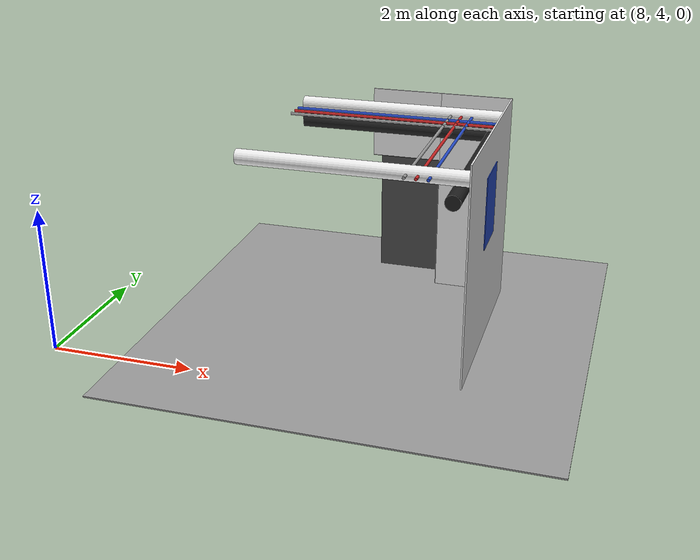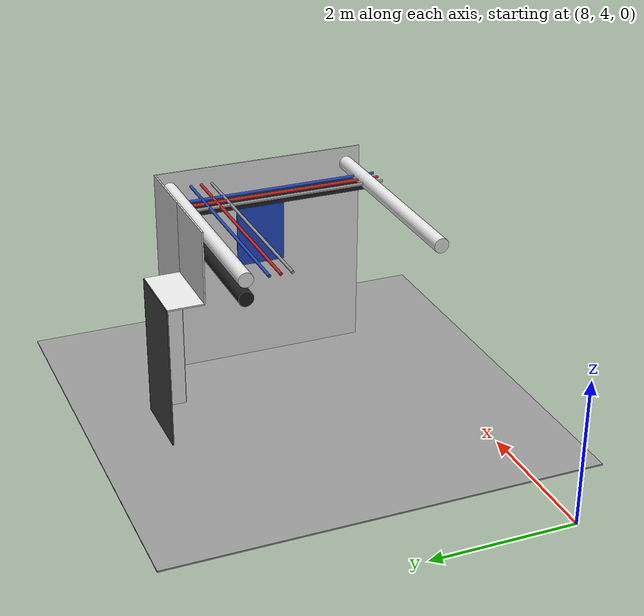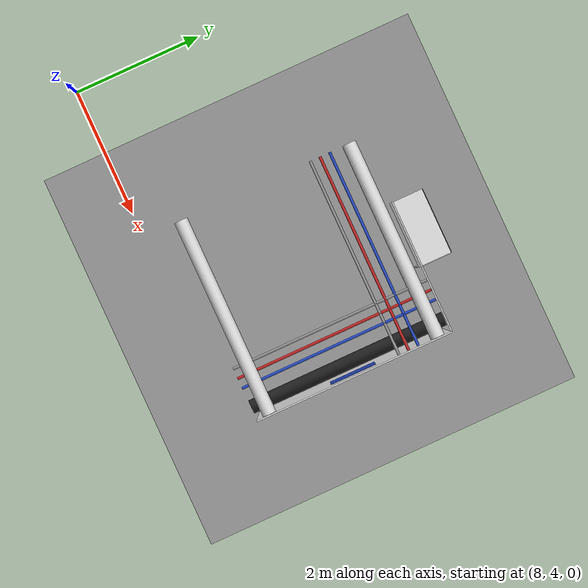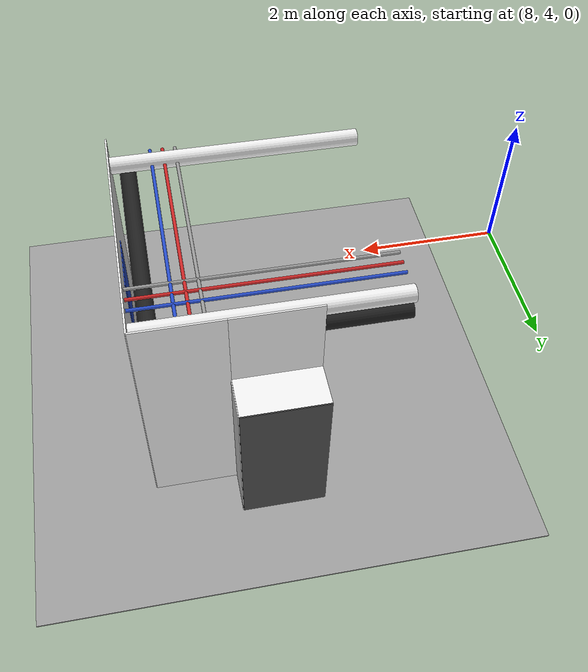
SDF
<sdf version="1.6">
 <world name="default">
  <model name="wall_right_4_2_0_3">
   <static>1</static>
   <pose>13.5 6.0 1.5 0.0 0.0 1.57</pose>
   <link name="link">
    <collision name="collision"><geometry><box><size>3.0 0.02 3.0</size></box></geometry></collision>
    <visual name="visual">
     <material>
      <script><name>Gazebo/White</name><uri>file://media/materials/scripts/gazebo.material</uri></script>
     </material>
     <geometry><box><size>3.0 0.02 3.0</size></box></geometry>
    </visual>
   </link>
  </model>
  <model name="black_pipe_right_4_2_0_3">
   <static>1</static>
   <pose>12.0 6.0 2.76 0.0 0.0 0.0</pose>
   <link name="link_0">
    <visual name="visual">
     <pose>1.3 0 -0.25 1.57 0 0</pose>
     <geometry><cylinder><radius>0.1</radius><length>3.0</length></cylinder></geometry>
     <material>
      <script><uri>file://media/materials/scripts/gazebo.material</uri><name>Gazebo/Black</name></script>
     </material>
    </visual>
    <collision name="collision">
     <pose>1.3 0 -0.25 1.57 0 0</pose>
     <geometry><cylinder><radius>0.1</radius><length>3.0</length></cylinder></geometry>
    </collision>
   </link>
  </model>
  <model name="grey_pipe_right_4_2_0_3">
   <static>1</static>
   <pose>12.0 6.0 2.76 0.0 0.0 0.0</pose>
   <link name="link_0">
    <visual name="visual">
     <pose>0.7 0 0 1.57 0 0</pose>
     <geometry><cylinder><radius>0.02</radius><length>3.0</length></cylinder></geometry>
     <material>
      <script><uri>file://media/materials/scripts/gazebo.material</uri><name>Gazebo/Grey</name></script>
     </material>
    </visual>
    <collision name="collision">
     <pose>0.7 0 0 1.57 0 0</pose>
     <geometry><cylinder><radius>0.02</radius><length>3.0</length></cylinder></geometry>
    </collision>
   </link>
  </model>
  <model name="red_pipe_right_4_2_0_3">
   <static>1</static>
   <pose>12.0 6.0 2.76 0.0 0.0 0.0</pose>
   <link name="link_0">
    <visual name="visual">
     <pose>0.85 0 0 1.57 0 0</pose>
     <geometry><cylinder><radius>0.02</radius><length>3.0</length></cylinder></geometry>
     <material>
      <script><uri>file://media/materials/scripts/gazebo.material</uri><name>Gazebo/Red</name></script>
     </material>
    </visual>
    <collision name="collision">
     <pose>0.85 0 0 1.57 0 0</pose>
     <geometry><cylinder><radius>0.02</radius><length>3.0</length></cylinder></geometry>
    </collision>
   </link>
  </model>
  <model name="blue_pipe_right_4_2_0_3">
   <static>1</static>
   <pose>12.0 6.0 2.76 0.0 0.0 0.0</pose>
   <link name="link_0">
    <visual name="visual">
     <pose>1 0 0 1.57 0 0</pose>
     <geometry><cylinder><radius>0.02</radius><length>3.0</length></cylinder></geometry>
     <material>
      <script><uri>file://media/materials/scripts/gazebo.material</uri><name>Gazebo/Blue</name></script>
     </material>
    </visual>
    <collision name="collision">
     <pose>1 0 0 1.57 0 0</pose>
     <geometry><cylinder><radius>0.02</radius><length>3.0</length></cylinder></geometry>
    </collision>
   </link>
  </model>
  <model name="white_pipe_left_1_4_2_0_3">
   <static>1</static>
   <pose>12.0 6.0 2.76 0.0 0.0 1.57</pose>
   <link name="link_0">
    <visual name="visual">
     <pose>-1.3 0 0 1.57 0 0</pose>
     <geometry><cylinder><radius>0.1</radius><length>3.0</length></cylinder></geometry>
     <material>
      <script><uri>file://media/materials/scripts/gazebo.material</uri><name>Gazebo/White</name></script>
     </material>
    </visual>
    <collision name="collision">
     <pose>-1.3 0 0 1.57 0 0</pose>
     <geometry><cylinder><radius>0.1</radius><length>3.0</length></cylinder></geometry>
    </collision>
   </link>
  </model>
  <model name="white_pipe_right_1_4_2_0_3">
   <static>1</static>
   <pose>12.0 6.0 2.76 0.0 0.0 1.57</pose>
   <link name="link_0">
    <visual name="visual">
     <pose>1.3 0 0 1.57 0 0</pose>
     <geometry><cylinder><radius>0.1</radius><length>3.0</length></cylinder></geometry>
     <material>
      <script><uri>file://media/materials/scripts/gazebo.material</uri><name>Gazebo/White</name></script>
     </material>
    </visual>
    <collision name="collision">
     <pose>1.3 0 0 1.57 0 0</pose>
     <geometry><cylinder><radius>0.1</radius><length>3.0</length></cylinder></geometry>
    </collision>
   </link>
  </model>
  <model name="black_pipe_right_1_4_2_0_3">
   <static>1</static>
   <pose>12.0 6.0 2.76 0.0 0.0 1.57</pose>
   <link name="link_0">
    <visual name="visual">
     <pose>1.3 0 -0.25 1.57 0 0</pose>
     <geometry><cylinder><radius>0.1</radius><length>3.0</length></cylinder></geometry>
     <material>
      <script><uri>file://media/materials/scripts/gazebo.material</uri><name>Gazebo/Black</name></script>
     </material>
    </visual>
    <collision name="collision">
     <pose>1.3 0 -0.25 1.57 0 0</pose>
     <geometry><cylinder><radius>0.1</radius><length>3.0</length></cylinder></geometry>
    </collision>
   </link>
  </model>
  <model name="grey_pipe_right_1_4_2_0_3">
   <static>1</static>
   <pose>12.0 6.0 2.76 0.0 0.0 1.57</pose>
   <link name="link_0">
    <visual name="visual">
     <pose>0.7 0 0 1.57 0 0</pose>
     <geometry><cylinder><radius>0.02</radius><length>3.0</length></cylinder></geometry>
     <material>
      <script><uri>file://media/materials/scripts/gazebo.material</uri><name>Gazebo/Grey</name></script>
     </material>
    </visual>
    <collision name="collision">
     <pose>0.7 0 0 1.57 0 0</pose>
     <geometry><cylinder><radius>0.02</radius><length>3.0</length></cylinder></geometry>
    </collision>
   </link>
  </model>
  <model name="red_pipe_right_1_4_2_0_3">
   <static>1</static>
   <pose>12.0 6.0 2.76 0.0 0.0 1.57</pose>
   <link name="link_0">
    <visual name="visual">
     <pose>0.85 0 0 1.57 0 0</pose>
     <geometry><cylinder><radius>0.02</radius><length>3.0</length></cylinder></geometry>
     <material>
      <script><uri>file://media/materials/scripts/gazebo.material</uri><name>Gazebo/Red</name></script>
     </material>
    </visual>
    <collision name="collision">
     <pose>0.85 0 0 1.57 0 0</pose>
     <geometry><cylinder><radius>0.02</radius><length>3.0</length></cylinder></geometry>
    </collision>
   </link>
  </model>
  <model name="blue_pipe_right_1_4_2_0_3">
   <static>1</static>
   <pose>12.0 6.0 2.76 0.0 0.0 1.57</pose>
   <link name="link_0">
    <visual name="visual">
     <pose>1 0 0 1.57 0 0</pose>
     <geometry><cylinder><radius>0.02</radius><length>3.0</length></cylinder></geometry>
     <material>
      <script><uri>file://media/materials/scripts/gazebo.material</uri><name>Gazebo/Blue</name></script>
     </material>
    </visual>
    <collision name="collision">
     <pose>1 0 0 1.57 0 0</pose>
     <geometry><cylinder><radius>0.02</radius><length>3.0</length></cylinder></geometry>
    </collision>
   </link>
  </model>
  <model name="panel_4_2_0_3">
   <static>1</static>
   <pose>13.5 6.0 1.95 0.0 0.0 0.0</pose>
   <link name="link">
    <collision name="collision"><geometry><box><size>0.04 0.7 1</size></box></geometry></collision>
    <visual name="visual">
     <material>
      <script><name>Gazebo/Blue</name><uri>file://media/materials/scripts/gazebo.material</uri></script>
     </material>
     <geometry><box><size>0.04 0.7 1</size></box></geometry>
    </visual>
   </link>
  </model>
  <model name="wall_front_front_left_4_2_0_3">
   <static>1</static>
   <pose>13.0 7.5 1.5 0.0 0.0 0.0</pose>
   <link name="link">
    <collision name="collision"><geometry><box><size>1.0 0.02 3.0</size></box></geometry></collision>
    <visual name="visual">
     <material>
      <script><name>Gazebo/White</name><uri>file://media/materials/scripts/gazebo.material</uri></script>
     </material>
     <geometry><box><size>1.0 0.02 3.0</size></box></geometry>
    </visual>
   </link>
  </model>
  <model name="wall_front_front_up_4_2_0_3">
   <static>1</static>
   <pose>12.0 7.5 2.5 0.0 0.0 0.0</pose>
   <link name="link">
    <collision name="collision"><geometry><box><size>1.0 0.02 1.0</size></box></geometry></collision>
    <visual name="visual">
     <material>
      <script><name>Gazebo/White</name><uri>file://media/materials/scripts/gazebo.material</uri></script>
     </material>
     <geometry><box><size>1.0 0.02 1.0</size></box></geometry>
    </visual>
   </link>
  </model>
  <model name="wall_front_inside_back_4_2_0_3">
   <static>1</static>
   <pose>12.0 8.0 1.0 0.0 0.0 0.0</pose>
   <link name="link">
    <collision name="collision"><geometry><box><size>1 0.02 2</size></box></geometry></collision>
    <visual name="visual">
     <material>
      <script><name>Gazebo/DarkGrey</name><uri>file://media/materials/scripts/gazebo.material</uri></script>
     </material>
     <geometry><box><size>1 0.02 2</size></box></geometry>
    </visual>
   </link>
  </model>
  <model name="wall_front_inside_right_4_2_0_3">
   <static>1</static>
   <pose>12.5 7.75 1.0 0.0 0.0 1.57</pose>
   <link name="link">
    <collision name="collision"><geometry><box><size>0.5 0.02 2</size></box></geometry></collision>
    <visual name="visual">
     <material>
      <script><name>Gazebo/White</name><uri>file://media/materials/scripts/gazebo.material</uri></script>
     </material>
     <geometry><box><size>0.5 0.02 2</size></box></geometry>
    </visual>
   </link>
  </model>
  <model name="wall_front_inside_top_4_2_0_3">
   <static>1</static>
   <pose>12.0 7.75 2.0 1.57 0.0 0.0</pose>
   <link name="link">
    <collision name="collision"><geometry><box><size>1 0.02 0.5</size></box></geometry></collision>
    <visual name="visual">
     <material>
      <script><name>Gazebo/White</name><uri>file://media/materials/scripts/gazebo.material</uri></script>
     </material>
     <geometry><box><size>1 0.02 0.5</size></box></geometry>
    </visual>
   </link>
  </model>
  <model name="wall_bottom_4_2_0_3">
   <static>1</static>
   <pose>12.0 6.0 0.0 0.0 0.0 0.0</pose>
   <link name="link">
    <collision name="collision"><geometry><box><size>6.0 6.0 0.02</size></box></geometry></collision>
    <visual name="visual">
     <material>
      <script><name>Gazebo/Grey</name><uri>file://media/materials/scripts/gazebo.material</uri></script>
     </material>
     <geometry><box><size>6.0 6.0 0.02</size></box></geometry>
    </visual>
   </link>
  </model>
 </world>
</sdf>
